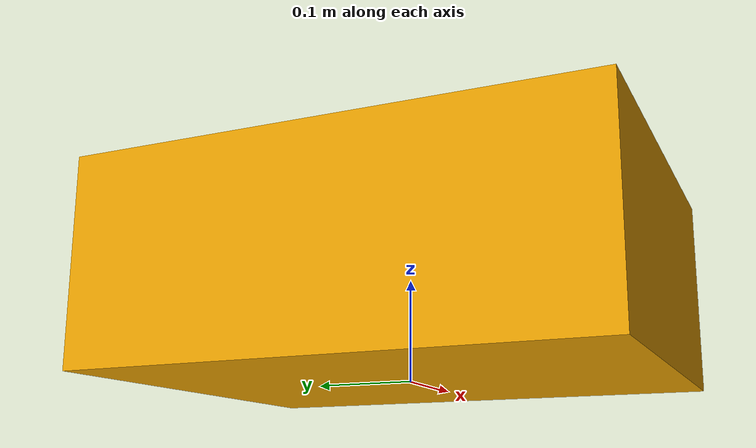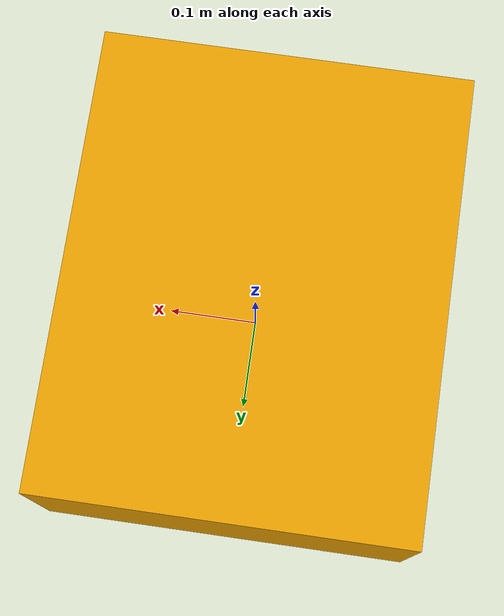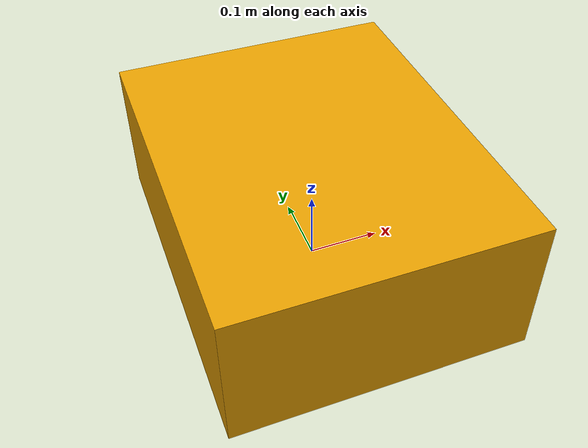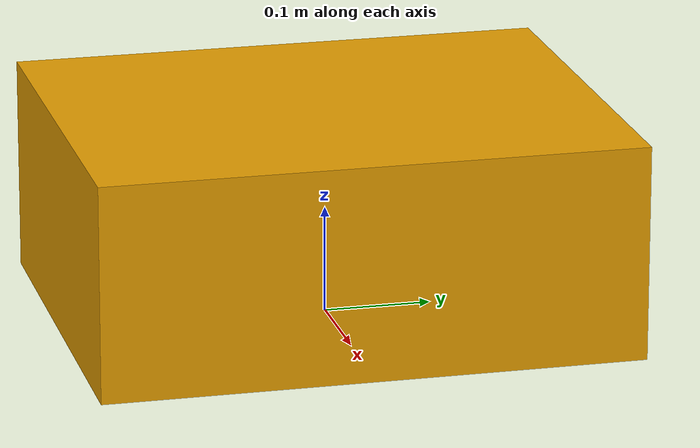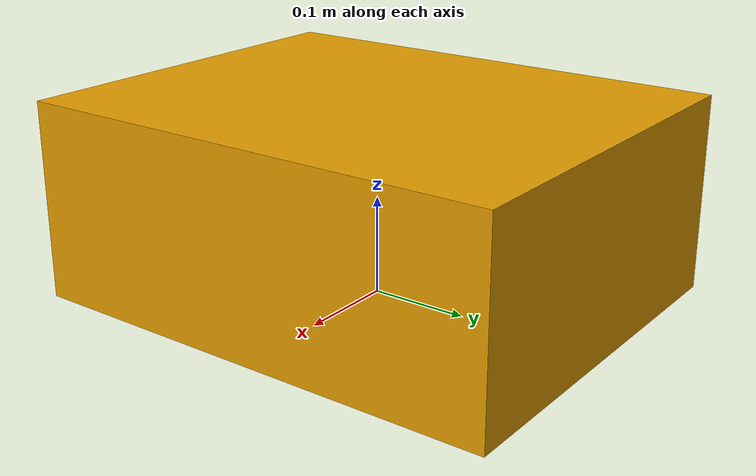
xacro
<?xml version="1.0"?>
<robot name="table" xmlns:xacro="http://ros.org/wiki/xacro">
  <xacro:arg name="x" default="0" />
  <xacro:arg name="y" default="0" />
  <xacro:arg name="z" default="0" />
  <xacro:arg name="l" default="0.4" />
  <xacro:arg name="h" default="0.2" />
  <xacro:arg name="w" default="0.5" />
  <xacro:arg name="color" default="blue" />
  <xacro:property name="h" value="$(arg h)" />
  <link name="table">
    <collision>
      <origin xyz="0 0 ${h/2.0}" rpy="0 0 0"/>
      <geometry>
        <box size="$(arg l) $(arg w) $(arg h)"/>
      </geometry>
    </collision>

    <visual>
      <origin xyz="0 0 ${h/2.0}" rpy="0 0 0"/>
      <geometry>
        <box size="$(arg l) $(arg w) $(arg h)"/>
      </geometry>
    </visual>
    <surface>
    <friction>
      <ode>
        <mu>100</mu>
        <mu2>100</mu2>
      </ode>
    </friction>
  </surface>
  <inertial>
    <origin xyz="0 0 0" rpy="0 0 0"/>
    <mass value="10"/>
    <inertia
      ixx="0.24" ixy="0.0" ixz="0.0"
      iyy="0.166" iyz="0.0"
      izz="0.34"/>
  </inertial>
  </link>
  <gazebo reference="table">
    <visual>
      <material>
        <xacro:include filename="$(find ros2_transformers)/sim/object_descriptions/urdf/colors.urdf.xacro" />
        <xacro:color color="$(arg color)" />
      </material>
    </visual>
    <dampingFactor>0.005</dampingFactor>
    <kp>1000000</kp>
    <kd>1.0</kd>
    <mu1>1000.0</mu1>
    <mu2>1000.0</mu2>
    <minDepth>0.001</minDepth>
  </gazebo>
</robot>
